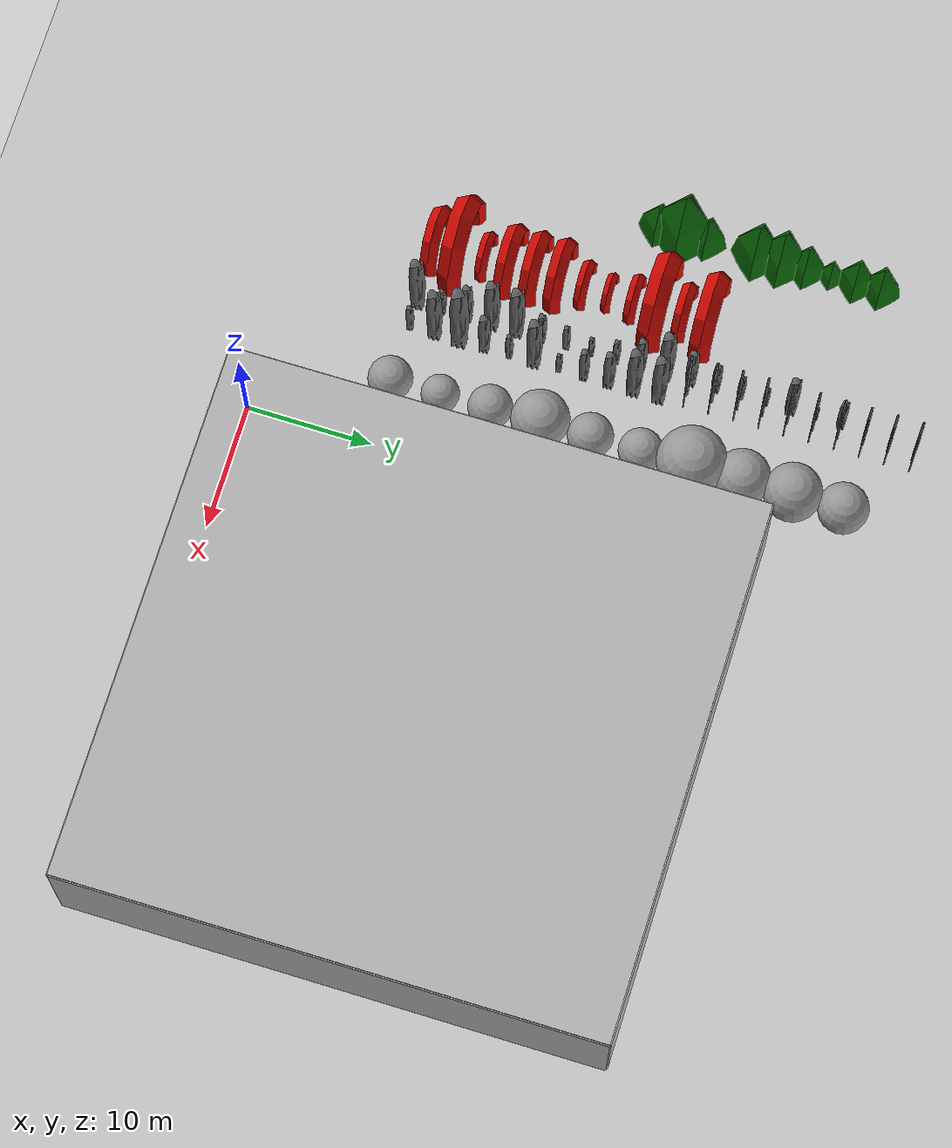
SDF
<sdf version="1.6">
 <world name="default">
  <model name="ground_plane">
   <static>1</static>
   <link name="link">
    <collision name="collision">
     <geometry><plane><normal>0 0 1</normal><size>1000 1000</size></plane></geometry>
     <surface>
      <contact><collide_bitmask>65535</collide_bitmask></contact>
      <friction><ode><mu>100</mu><mu2>50</mu2></ode></friction>
     </surface>
    </collision>
    <visual name="visual">
     <cast_shadows>0</cast_shadows>
     <geometry><plane><normal>0 0 1</normal><size>1000 1000</size></plane></geometry>
     <material>
      <script><uri>file://media/materials/scripts/gazebo.material</uri><name>Gazebo/Grey</name></script>
     </material>
    </visual>
   </link>
  </model>
  <model name="wall_top">
   <static>1</static>
   <link name="link">
    <pose>0 0 0.1 0 0 0</pose>
    <collision name="collision"><geometry><box><size>42.0 42.0 0.2</size></box></geometry></collision>
    <visual name="visual">
     <cast_shadows>0</cast_shadows>
     <geometry><box><size>42.0 42.0 0.2</size></box></geometry>
    </visual>
   </link>
   <pose>20.0 20.0 10.0 0 0 0</pose>
  </model>
  <model name="Simple Pyramid_8">
   <pose>-23.5 26 0 0 -0 0</pose>
   <static>1</static>
   <link name="link">
    <collision name="collision">
     <geometry>
      <mesh><uri>model://Simple Pyramid/meshes/Simple Pyramid.dae</uri><scale>0.75 0.75 0.75</scale></mesh>
     </geometry>
    </collision>
    <visual name="visual">
     <geometry>
      <mesh><uri>model://Simple Pyramid/meshes/Simple Pyramid.dae</uri><scale>0.75 0.75 0.75</scale></mesh>
     </geometry>
    </visual>
   </link>
  </model>
  <model name="Simple Pyramid_9">
   <pose>-23.5 28 0 0 -0 0</pose>
   <static>1</static>
   <link name="link">
    <collision name="collision">
     <geometry>
      <mesh><uri>model://Simple Pyramid/meshes/Simple Pyramid.dae</uri><scale>1.25 1.25 1.25</scale></mesh>
     </geometry>
    </collision>
    <visual name="visual">
     <geometry>
      <mesh><uri>model://Simple Pyramid/meshes/Simple Pyramid.dae</uri><scale>1.25 1.25 1.25</scale></mesh>
     </geometry>
    </visual>
   </link>
  </model>
  <model name="Simple Pyramid_10">
   <pose>-23.5 30 0 0 -0 0</pose>
   <static>1</static>
   <link name="link">
    <collision name="collision">
     <geometry>
      <mesh><uri>model://Simple Pyramid/meshes/Simple Pyramid.dae</uri><scale>0.75 0.75 0.75</scale></mesh>
     </geometry>
    </collision>
    <visual name="visual">
     <geometry>
      <mesh><uri>model://Simple Pyramid/meshes/Simple Pyramid.dae</uri><scale>0.75 0.75 0.75</scale></mesh>
     </geometry>
    </visual>
   </link>
  </model>
  <model name="Simple U_7">
   <pose>-17 24 0 0 -0 0</pose>
   <static>1</static>
   <link name="link">
    <collision name="collision">
     <geometry><mesh><uri>model://Simple U/meshes/Simple U.dae</uri><scale>0.4 0.4 0.4</scale></mesh></geometry>
    </collision>
    <visual name="visual">
     <geometry><mesh><uri>model://Simple U/meshes/Simple U.dae</uri><scale>0.4 0.4 0.4</scale></mesh></geometry>
    </visual>
   </link>
  </model>
  <model name="Simple U_0">
   <pose>-17 10 0 0 -0 0</pose>
   <static>1</static>
   <link name="link">
    <collision name="collision">
     <geometry><mesh><uri>model://Simple U/meshes/Simple U.dae</uri><scale>0.7 0.7 0.7</scale></mesh></geometry>
    </collision>
    <visual name="visual">
     <geometry><mesh><uri>model://Simple U/meshes/Simple U.dae</uri><scale>0.7 0.7 0.7</scale></mesh></geometry>
    </visual>
   </link>
  </model>
  <model name="Simple U_1">
   <pose>-17 12 0 0 -0 0</pose>
   <static>1</static>
   <link name="link">
    <collision name="collision">
     <geometry><mesh><uri>model://Simple U/meshes/Simple U.dae</uri></mesh></geometry>
    </collision>
    <visual name="visual">
     <geometry><mesh><uri>model://Simple U/meshes/Simple U.dae</uri></mesh></geometry>
    </visual>
   </link>
  </model>
  <model name="Simple U_2">
   <pose>-17 14 0 0 -0 0</pose>
   <static>1</static>
   <link name="link">
    <collision name="collision">
     <geometry><mesh><uri>model://Simple U/meshes/Simple U.dae</uri><scale>0.5 0.5 0.5</scale></mesh></geometry>
    </collision>
    <visual name="visual">
     <geometry><mesh><uri>model://Simple U/meshes/Simple U.dae</uri><scale>0.5 0.5 0.5</scale></mesh></geometry>
    </visual>
   </link>
  </model>
  <model name="Simple U_3">
   <pose>-17 16 0 0 -0 0</pose>
   <static>1</static>
   <link name="link">
    <collision name="collision">
     <geometry><mesh><uri>model://Simple U/meshes/Simple U.dae</uri><scale>0.75 0.75 0.75</scale></mesh></geometry>
    </collision>
    <visual name="visual">
     <geometry><mesh><uri>model://Simple U/meshes/Simple U.dae</uri><scale>0.75 0.75 0.75</scale></mesh></geometry>
    </visual>
   </link>
  </model>
  <model name="Simple U_4">
   <pose>-17 18 0 0 -0 0</pose>
   <static>1</static>
   <link name="link">
    <collision name="collision">
     <geometry><mesh><uri>model://Simple U/meshes/Simple U.dae</uri><scale>0.75 0.75 0.75</scale></mesh></geometry>
    </collision>
    <visual name="visual">
     <geometry><mesh><uri>model://Simple U/meshes/Simple U.dae</uri><scale>0.75 0.75 0.75</scale></mesh></geometry>
    </visual>
   </link>
  </model>
  <model name="Simple U_5">
   <pose>-17 20 0 0 -0 0</pose>
   <static>1</static>
   <link name="link">
    <collision name="collision">
     <geometry><mesh><uri>model://Simple U/meshes/Simple U.dae</uri><scale>0.75 0.75 0.75</scale></mesh></geometry>
    </collision>
    <visual name="visual">
     <geometry><mesh><uri>model://Simple U/meshes/Simple U.dae</uri><scale>0.75 0.75 0.75</scale></mesh></geometry>
    </visual>
   </link>
  </model>
  <model name="Simple U_6">
   <pose>-17 22 0 0 -0 0</pose>
   <static>1</static>
   <link name="link">
    <collision name="collision">
     <geometry><mesh><uri>model://Simple U/meshes/Simple U.dae</uri><scale>0.5 0.5 0.5</scale></mesh></geometry>
    </collision>
    <visual name="visual">
     <geometry><mesh><uri>model://Simple U/meshes/Simple U.dae</uri><scale>0.5 0.5 0.5</scale></mesh></geometry>
    </visual>
   </link>
  </model>
  <model name="Simple Stone_25">
   <pose>-10 24 0 0 -0 0</pose>
   <static>1</static>
   <link name="link">
    <collision name="collision">
     <geometry>
      <mesh><uri>model://Simple Stone/meshes/Simple Stone.dae</uri><scale>0.66 0.66 0.66</scale></mesh>
     </geometry>
    </collision>
    <visual name="visual">
     <geometry>
      <mesh><uri>model://Simple Stone/meshes/Simple Stone.dae</uri><scale>0.66 0.66 0.66</scale></mesh>
     </geometry>
    </visual>
   </link>
  </model>
  <model name="Simple Stone_0">
   <pose>-12 10 0 0 -0 0</pose>
   <static>1</static>
   <link name="link">
    <collision name="collision">
     <geometry><mesh><uri>model://Simple Stone/meshes/Simple Stone.dae</uri></mesh></geometry>
    </collision>
    <visual name="visual">
     <geometry><mesh><uri>model://Simple Stone/meshes/Simple Stone.dae</uri></mesh></geometry>
    </visual>
   </link>
  </model>
  <model name="Simple Stone_1">
   <pose>-12 12 0 0 -0 0</pose>
   <static>1</static>
   <link name="link">
    <collision name="collision">
     <geometry>
      <mesh><uri>model://Simple Stone/meshes/Simple Stone.dae</uri><scale>0.5 0.5 0.5</scale></mesh>
     </geometry>
    </collision>
    <visual name="visual">
     <geometry>
      <mesh><uri>model://Simple Stone/meshes/Simple Stone.dae</uri><scale>0.5 0.5 0.5</scale></mesh>
     </geometry>
    </visual>
   </link>
  </model>
  <model name="Simple Stone_2">
   <pose>-12 14 0 0 -0 0</pose>
   <static>1</static>
   <link name="link">
    <collision name="collision">
     <geometry>
      <mesh><uri>model://Simple Stone/meshes/Simple Stone.dae</uri><scale>0.75 0.75 0.75</scale></mesh>
     </geometry>
    </collision>
    <visual name="visual">
     <geometry>
      <mesh><uri>model://Simple Stone/meshes/Simple Stone.dae</uri><scale>0.75 0.75 0.75</scale></mesh>
     </geometry>
    </visual>
   </link>
  </model>
  <model name="Simple Stone_3">
   <pose>-12 16 0 0 -0 0</pose>
   <static>1</static>
   <link name="link">
    <collision name="collision">
     <geometry><mesh><uri>model://Simple Stone/meshes/Simple Stone.dae</uri></mesh></geometry>
    </collision>
    <visual name="visual">
     <geometry><mesh><uri>model://Simple Stone/meshes/Simple Stone.dae</uri></mesh></geometry>
    </visual>
   </link>
  </model>
  <model name="Simple Stone_4">
   <pose>-12 18 0 0 -0 0</pose>
   <static>1</static>
   <link name="link">
    <collision name="collision">
     <geometry><mesh><uri>model://Simple Stone/meshes/Simple Stone.dae</uri></mesh></geometry>
    </collision>
    <visual name="visual">
     <geometry><mesh><uri>model://Simple Stone/meshes/Simple Stone.dae</uri></mesh></geometry>
    </visual>
   </link>
  </model>
  <model name="Simple Stone_5">
   <pose>-12 20 0 0 -0 0</pose>
   <static>1</static>
   <link name="link">
    <collision name="collision">
     <geometry>
      <mesh><uri>model://Simple Stone/meshes/Simple Stone.dae</uri><scale>0.6 0.6 0.6</scale></mesh>
     </geometry>
    </collision>
    <visual name="visual">
     <geometry>
      <mesh><uri>model://Simple Stone/meshes/Simple Stone.dae</uri><scale>0.6 0.6 0.6</scale></mesh>
     </geometry>
    </visual>
   </link>
  </model>
  <model name="Simple Stone_6">
   <pose>-12 22 0 0 -0 0</pose>
   <static>1</static>
   <link name="link">
    <collision name="collision">
     <geometry>
      <mesh><uri>model://Simple Stone/meshes/Simple Stone.dae</uri><scale>0.5 0.5 0.5</scale></mesh>
     </geometry>
    </collision>
    <visual name="visual">
     <geometry>
      <mesh><uri>model://Simple Stone/meshes/Simple Stone.dae</uri><scale>0.5 0.5 0.5</scale></mesh>
     </geometry>
    </visual>
   </link>
  </model>
  <model name="Simple Stone_7">
   <pose>-12 24 0 0 -0 0</pose>
   <static>1</static>
   <link name="link">
    <collision name="collision">
     <geometry>
      <mesh><uri>model://Simple Stone/meshes/Simple Stone.dae</uri><scale>0.4 0.4 0.4</scale></mesh>
     </geometry>
    </collision>
    <visual name="visual">
     <geometry>
      <mesh><uri>model://Simple Stone/meshes/Simple Stone.dae</uri><scale>0.4 0.4 0.4</scale></mesh>
     </geometry>
    </visual>
   </link>
  </model>
  <model name="Simple Stone_8">
   <pose>-12 26 0 0 -0 0</pose>
   <static>1</static>
   <link name="link">
    <collision name="collision">
     <geometry>
      <mesh><uri>model://Simple Stone/meshes/Simple Stone.dae</uri><scale>0.5 0.5 0.5</scale></mesh>
     </geometry>
    </collision>
    <visual name="visual">
     <geometry>
      <mesh><uri>model://Simple Stone/meshes/Simple Stone.dae</uri><scale>0.5 0.5 0.5</scale></mesh>
     </geometry>
    </visual>
   </link>
  </model>
  <model name="Simple Stone_9">
   <pose>-12 28 0 0 -0 0</pose>
   <static>1</static>
   <link name="link">
    <collision name="collision">
     <geometry>
      <mesh><uri>model://Simple Stone/meshes/Simple Stone.dae</uri><scale>0.7 0.7 0.7</scale></mesh>
     </geometry>
    </collision>
    <visual name="visual">
     <geometry>
      <mesh><uri>model://Simple Stone/meshes/Simple Stone.dae</uri><scale>0.7 0.7 0.7</scale></mesh>
     </geometry>
    </visual>
   </link>
  </model>
  <model name="Simple Stone_10">
   <pose>-12 30 0 0 -0 0</pose>
   <static>1</static>
   <link name="link">
    <collision name="collision">
     <geometry><mesh><uri>model://Simple Stone/meshes/Simple Stone.dae</uri></mesh></geometry>
    </collision>
    <visual name="visual">
     <geometry><mesh><uri>model://Simple Stone/meshes/Simple Stone.dae</uri></mesh></geometry>
    </visual>
   </link>
  </model>
  <model name="Simple Stone_11">
   <pose>-12 32 0 0 -0 0</pose>
   <static>1</static>
   <link name="link">
    <collision name="collision">
     <geometry>
      <mesh><uri>model://Simple Stone/meshes/Simple Stone.dae</uri><scale>0.75 0.75 0.75</scale></mesh>
     </geometry>
    </collision>
    <visual name="visual">
     <geometry>
      <mesh><uri>model://Simple Stone/meshes/Simple Stone.dae</uri><scale>0.75 0.75 0.75</scale></mesh>
     </geometry>
    </visual>
   </link>
  </model>
  <model name="Simple Stone_12">
   <pose>-12 34 0 0 -0 0</pose>
   <static>1</static>
   <link name="link">
    <collision name="collision">
     <geometry>
      <mesh><uri>model://Simple Stone/meshes/Simple Stone.dae</uri><scale>0.6 0.6 0.6</scale></mesh>
     </geometry>
    </collision>
    <visual name="visual">
     <geometry>
      <mesh><uri>model://Simple Stone/meshes/Simple Stone.dae</uri><scale>0.6 0.6 0.6</scale></mesh>
     </geometry>
    </visual>
   </link>
  </model>
  <model name="Simple Stone_13">
   <pose>-12 36 0 0 -0 0</pose>
   <static>1</static>
   <link name="link">
    <collision name="collision">
     <geometry>
      <mesh><uri>model://Simple Stone/meshes/Simple Stone.dae</uri><scale>0.5 0.5 0.5</scale></mesh>
     </geometry>
    </collision>
    <visual name="visual">
     <geometry>
      <mesh><uri>model://Simple Stone/meshes/Simple Stone.dae</uri><scale>0.5 0.5 0.5</scale></mesh>
     </geometry>
    </visual>
   </link>
  </model>
  <model name="Simple Stone_14">
   <pose>-12 38 0 0 -0 0</pose>
   <static>1</static>
   <link name="link">
    <collision name="collision">
     <geometry>
      <mesh><uri>model://Simple Stone/meshes/Simple Stone.dae</uri><scale>0.4 0.4 0.4</scale></mesh>
     </geometry>
    </collision>
    <visual name="visual">
     <geometry>
      <mesh><uri>model://Simple Stone/meshes/Simple Stone.dae</uri><scale>0.4 0.4 0.4</scale></mesh>
     </geometry>
    </visual>
   </link>
  </model>
  <model name="Simple Stone_15">
   <pose>-12 40 0 0 -0 0</pose>
   <static>1</static>
   <link name="link">
    <collision name="collision">
     <geometry>
      <mesh><uri>model://Simple Stone/meshes/Simple Stone.dae</uri><scale>0.8 0.8 0.8</scale></mesh>
     </geometry>
    </collision>
    <visual name="visual">
     <geometry>
      <mesh><uri>model://Simple Stone/meshes/Simple Stone.dae</uri><scale>0.8 0.8 0.8</scale></mesh>
     </geometry>
    </visual>
   </link>
  </model>
  <model name="Simple Stone_16">
   <pose>-12 42 0 0 -0 0</pose>
   <static>1</static>
   <link name="link">
    <collision name="collision">
     <geometry>
      <mesh><uri>model://Simple Stone/meshes/Simple Stone.dae</uri><scale>0.3 0.3 0.3</scale></mesh>
     </geometry>
    </collision>
    <visual name="visual">
     <geometry>
      <mesh><uri>model://Simple Stone/meshes/Simple Stone.dae</uri><scale>0.3 0.3 0.3</scale></mesh>
     </geometry>
    </visual>
   </link>
  </model>
  <model name="Simple Stone_17">
   <pose>-12 44 0 0 -0 0</pose>
   <static>1</static>
   <link name="link">
    <collision name="collision">
     <geometry>
      <mesh><uri>model://Simple Stone/meshes/Simple Stone.dae</uri><scale>0.6 0.6 0.6</scale></mesh>
     </geometry>
    </collision>
    <visual name="visual">
     <geometry>
      <mesh><uri>model://Simple Stone/meshes/Simple Stone.dae</uri><scale>0.6 0.6 0.6</scale></mesh>
     </geometry>
    </visual>
   </link>
  </model>
  <model name="Simple Stone_18">
   <pose>-10 10 0 0 -0 0</pose>
   <static>1</static>
   <link name="link">
    <collision name="collision">
     <geometry>
      <mesh><uri>model://Simple Stone/meshes/Simple Stone.dae</uri><scale>0.5 0.5 0.5</scale></mesh>
     </geometry>
    </collision>
    <visual name="visual">
     <geometry>
      <mesh><uri>model://Simple Stone/meshes/Simple Stone.dae</uri><scale>0.5 0.5 0.5</scale></mesh>
     </geometry>
    </visual>
   </link>
  </model>
  <model name="Simple Stone_19">
   <pose>-10 12 0 0 -0 0</pose>
   <static>1</static>
   <link name="link">
    <collision name="collision">
     <geometry><mesh><uri>model://Simple Stone/meshes/Simple Stone.dae</uri></mesh></geometry>
    </collision>
    <visual name="visual">
     <geometry><mesh><uri>model://Simple Stone/meshes/Simple Stone.dae</uri></mesh></geometry>
    </visual>
   </link>
  </model>
  <model name="Simple Stone_20">
   <pose>-10 14 0 0 -0 0</pose>
   <static>1</static>
   <link name="link">
    <collision name="collision">
     <geometry>
      <mesh><uri>model://Simple Stone/meshes/Simple Stone.dae</uri><scale>1.2 1.2 1.2</scale></mesh>
     </geometry>
    </collision>
    <visual name="visual">
     <geometry>
      <mesh><uri>model://Simple Stone/meshes/Simple Stone.dae</uri><scale>1.2 1.2 1.2</scale></mesh>
     </geometry>
    </visual>
   </link>
  </model>
  <model name="Simple Stone_21">
   <pose>-10 16 0 0 -0 0</pose>
   <static>1</static>
   <link name="link">
    <collision name="collision">
     <geometry>
      <mesh><uri>model://Simple Stone/meshes/Simple Stone.dae</uri><scale>0.77 0.77 0.77</scale></mesh>
     </geometry>
    </collision>
    <visual name="visual">
     <geometry>
      <mesh><uri>model://Simple Stone/meshes/Simple Stone.dae</uri><scale>0.77 0.77 0.77</scale></mesh>
     </geometry>
    </visual>
   </link>
  </model>
  <model name="Simple Stone_22">
   <pose>-10 18 0 0 -0 0</pose>
   <static>1</static>
   <link name="link">
    <collision name="collision">
     <geometry>
      <mesh><uri>model://Simple Stone/meshes/Simple Stone.dae</uri><scale>0.5 0.5 0.5</scale></mesh>
     </geometry>
    </collision>
    <visual name="visual">
     <geometry>
      <mesh><uri>model://Simple Stone/meshes/Simple Stone.dae</uri><scale>0.5 0.5 0.5</scale></mesh>
     </geometry>
    </visual>
   </link>
  </model>
  <model name="Simple Stone_23">
   <pose>-10 20 0 0 -0 0</pose>
   <static>1</static>
   <link name="link">
    <collision name="collision">
     <geometry><mesh><uri>model://Simple Stone/meshes/Simple Stone.dae</uri></mesh></geometry>
    </collision>
    <visual name="visual">
     <geometry><mesh><uri>model://Simple Stone/meshes/Simple Stone.dae</uri></mesh></geometry>
    </visual>
   </link>
  </model>
  <model name="Simple Stone_24">
   <pose>-10 22 0 0 -0 0</pose>
   <static>1</static>
   <link name="link">
    <collision name="collision">
     <geometry>
      <mesh><uri>model://Simple Stone/meshes/Simple Stone.dae</uri><scale>0.4 0.4 0.4</scale></mesh>
     </geometry>
    </collision>
    <visual name="visual">
     <geometry>
      <mesh><uri>model://Simple Stone/meshes/Simple Stone.dae</uri><scale>0.4 0.4 0.4</scale></mesh>
     </geometry>
    </visual>
   </link>
  </model>
  <model name="Simple Pyramid_17">
   <pose>-23.5 44 0 0 -0 0</pose>
   <static>1</static>
   <link name="link">
    <collision name="collision">
     <geometry>
      <mesh><uri>model://Simple Pyramid/meshes/Simple Pyramid.dae</uri><scale>0.75 0.75 0.75</scale></mesh>
     </geometry>
    </collision>
    <visual name="visual">
     <geometry>
      <mesh><uri>model://Simple Pyramid/meshes/Simple Pyramid.dae</uri><scale>0.75 0.75 0.75</scale></mesh>
     </geometry>
    </visual>
   </link>
  </model>
  <model name="Simple U_11">
   <pose>-17 32 0 0 -0 0</pose>
   <static>1</static>
   <link name="link">
    <collision name="collision">
     <geometry><mesh><uri>model://Simple U/meshes/Simple U.dae</uri><scale>0.9 0.9 0.9</scale></mesh></geometry>
    </collision>
    <visual name="visual">
     <geometry><mesh><uri>model://Simple U/meshes/Simple U.dae</uri><scale>0.9 0.9 0.9</scale></mesh></geometry>
    </visual>
   </link>
  </model>
  <model name="Simple U_8">
   <pose>-17 26 0 0 -0 0</pose>
   <static>1</static>
   <link name="link">
    <collision name="collision">
     <geometry><mesh><uri>model://Simple U/meshes/Simple U.dae</uri><scale>0.5 0.5 0.5</scale></mesh></geometry>
    </collision>
    <visual name="visual">
     <geometry><mesh><uri>model://Simple U/meshes/Simple U.dae</uri><scale>0.5 0.5 0.5</scale></mesh></geometry>
    </visual>
   </link>
  </model>
  <model name="Simple U_9">
   <pose>-17 28 0 0 -0 0</pose>
   <static>1</static>
   <link name="link">
    <collision name="collision">
     <geometry><mesh><uri>model://Simple U/meshes/Simple U.dae</uri></mesh></geometry>
    </collision>
    <visual name="visual">
     <geometry><mesh><uri>model://Simple U/meshes/Simple U.dae</uri></mesh></geometry>
    </visual>
   </link>
  </model>
  <model name="Simple Pyramid_12">
   <pose>-23.5 34 0 0 -0 0</pose>
   <static>1</static>
   <link name="link">
    <collision name="collision">
     <geometry><mesh><uri>model://Simple Pyramid/meshes/Simple Pyramid.dae</uri></mesh></geometry>
    </collision>
    <visual name="visual">
     <geometry><mesh><uri>model://Simple Pyramid/meshes/Simple Pyramid.dae</uri></mesh></geometry>
    </visual>
   </link>
  </model>
  <model name="Simple Pyramid_13">
   <pose>-23.5 36 0 0 -0 0</pose>
   <static>1</static>
   <link name="link">
    <collision name="collision">
     <geometry><mesh><uri>model://Simple Pyramid/meshes/Simple Pyramid.dae</uri></mesh></geometry>
    </collision>
    <visual name="visual">
     <geometry><mesh><uri>model://Simple Pyramid/meshes/Simple Pyramid.dae</uri></mesh></geometry>
    </visual>
   </link>
  </model>
  <model name="Simple Pyramid_14">
   <pose>-23.5 38 0 0 -0 0</pose>
   <static>1</static>
   <link name="link">
    <collision name="collision">
     <geometry>
      <mesh><uri>model://Simple Pyramid/meshes/Simple Pyramid.dae</uri><scale>0.75 0.75 0.75</scale></mesh>
     </geometry>
    </collision>
    <visual name="visual">
     <geometry>
      <mesh><uri>model://Simple Pyramid/meshes/Simple Pyramid.dae</uri><scale>0.75 0.75 0.75</scale></mesh>
     </geometry>
    </visual>
   </link>
  </model>
  <model name="Simple Pyramid_15">
   <pose>-23.5 40 0 0 -0 0</pose>
   <static>1</static>
   <link name="link">
    <collision name="collision">
     <geometry>
      <mesh><uri>model://Simple Pyramid/meshes/Simple Pyramid.dae</uri><scale>0.5 0.5 0.5</scale></mesh>
     </geometry>
    </collision>
    <visual name="visual">
     <geometry>
      <mesh><uri>model://Simple Pyramid/meshes/Simple Pyramid.dae</uri><scale>0.5 0.5 0.5</scale></mesh>
     </geometry>
    </visual>
   </link>
  </model>
  <model name="Simple Stone_28">
   <pose>-10 30 0 0 -0 0</pose>
   <static>1</static>
   <link name="link">
    <collision name="collision">
     <geometry><mesh><uri>model://Simple Stone/meshes/Simple Stone.dae</uri></mesh></geometry>
    </collision>
    <visual name="visual">
     <geometry><mesh><uri>model://Simple Stone/meshes/Simple Stone.dae</uri></mesh></geometry>
    </visual>
   </link>
  </model>
  <model name="Simple Stone_29">
   <pose>-10 32 0 0 -0 0</pose>
   <static>1</static>
   <link name="link">
    <collision name="collision">
     <geometry>
      <mesh><uri>model://Simple Stone/meshes/Simple Stone.dae</uri><scale>0.1 0.1 1.0</scale></mesh>
     </geometry>
    </collision>
    <visual name="visual">
     <geometry>
      <mesh><uri>model://Simple Stone/meshes/Simple Stone.dae</uri><scale>0.1 0.1 1.0</scale></mesh>
     </geometry>
    </visual>
   </link>
  </model>
  <model name="Simple Stone_30">
   <pose>-10 34 0 0 -0 0</pose>
   <static>1</static>
   <link name="link">
    <collision name="collision">
     <geometry>
      <mesh><uri>model://Simple Stone/meshes/Simple Stone.dae</uri><scale>0.1 0.1 1.0</scale></mesh>
     </geometry>
    </collision>
    <visual name="visual">
     <geometry>
      <mesh><uri>model://Simple Stone/meshes/Simple Stone.dae</uri><scale>0.1 0.1 1.0</scale></mesh>
     </geometry>
    </visual>
   </link>
  </model>
  <model name="Simple Stone_31">
   <pose>-10 36 0 0 -0 0</pose>
   <static>1</static>
   <link name="link">
    <collision name="collision">
     <geometry>
      <mesh><uri>model://Simple Stone/meshes/Simple Stone.dae</uri><scale>0.1 0.1 1.0</scale></mesh>
     </geometry>
    </collision>
    <visual name="visual">
     <geometry>
      <mesh><uri>model://Simple Stone/meshes/Simple Stone.dae</uri><scale>0.1 0.1 1.0</scale></mesh>
     </geometry>
    </visual>
   </link>
  </model>
  <model name="Simple Stone_32">
   <pose>-10 38 0 0 -0 0</pose>
   <static>1</static>
   <link name="link">
    <collision name="collision">
     <geometry>
      <mesh><uri>model://Simple Stone/meshes/Simple Stone.dae</uri><scale>0.1 0.1 1.0</scale></mesh>
     </geometry>
    </collision>
    <visual name="visual">
     <geometry>
      <mesh><uri>model://Simple Stone/meshes/Simple Stone.dae</uri><scale>0.1 0.1 1.0</scale></mesh>
     </geometry>
    </visual>
   </link>
  </model>
  <model name="Simple Stone_33">
   <pose>-10 40 0 0 -0 0</pose>
   <static>1</static>
   <link name="link">
    <collision name="collision">
     <geometry>
      <mesh><uri>model://Simple Stone/meshes/Simple Stone.dae</uri><scale>0.1 0.1 1.0</scale></mesh>
     </geometry>
    </collision>
    <visual name="visual">
     <geometry>
      <mesh><uri>model://Simple Stone/meshes/Simple Stone.dae</uri><scale>0.1 0.1 1.0</scale></mesh>
     </geometry>
    </visual>
   </link>
  </model>
  <model name="Simple Stone_34">
   <pose>-11 32 0 0 -0 0</pose>
   <static>1</static>
   <link name="link">
    <collision name="collision">
     <geometry>
      <mesh><uri>model://Simple Stone/meshes/Simple Stone.dae</uri><scale>0.2 0.2 1.0</scale></mesh>
     </geometry>
    </collision>
    <visual name="visual">
     <geometry>
      <mesh><uri>model://Simple Stone/meshes/Simple Stone.dae</uri><scale>0.2 0.2 1.0</scale></mesh>
     </geometry>
    </visual>
   </link>
  </model>
  <model name="Simple Stone_35">
   <pose>-11 34 0 0 -0 0</pose>
   <static>1</static>
   <link name="link">
    <collision name="collision">
     <geometry>
      <mesh><uri>model://Simple Stone/meshes/Simple Stone.dae</uri><scale>0.2 0.2 1.0</scale></mesh>
     </geometry>
    </collision>
    <visual name="visual">
     <geometry>
      <mesh><uri>model://Simple Stone/meshes/Simple Stone.dae</uri><scale>0.2 0.2 1.0</scale></mesh>
     </geometry>
    </visual>
   </link>
  </model>
  <model name="Simple Stone_36">
   <pose>-11 36 0 0 -0 0</pose>
   <static>1</static>
   <link name="link">
    <collision name="collision">
     <geometry>
      <mesh><uri>model://Simple Stone/meshes/Simple Stone.dae</uri><scale>0.2 0.2 1.0</scale></mesh>
     </geometry>
    </collision>
    <visual name="visual">
     <geometry>
      <mesh><uri>model://Simple Stone/meshes/Simple Stone.dae</uri><scale>0.2 0.2 1.0</scale></mesh>
     </geometry>
    </visual>
   </link>
  </model>
  <model name="Simple Stone_37">
   <pose>-11 38 0 0 -0 0</pose>
   <static>1</static>
   <link name="link">
    <collision name="collision">
     <geometry>
      <mesh><uri>model://Simple Stone/meshes/Simple Stone.dae</uri><scale>0.2 0.2 1.0</scale></mesh>
     </geometry>
    </collision>
    <visual name="visual">
     <geometry>
      <mesh><uri>model://Simple Stone/meshes/Simple Stone.dae</uri><scale>0.2 0.2 1.0</scale></mesh>
     </geometry>
    </visual>
   </link>
  </model>
  <model name="Simple Stone_38">
   <pose>-11 40 0 0 -0 0</pose>
   <static>1</static>
   <link name="link">
    <collision name="collision">
     <geometry>
      <mesh><uri>model://Simple Stone/meshes/Simple Stone.dae</uri><scale>0.2 0.2 1.0</scale></mesh>
     </geometry>
    </collision>
    <visual name="visual">
     <geometry>
      <mesh><uri>model://Simple Stone/meshes/Simple Stone.dae</uri><scale>0.2 0.2 1.0</scale></mesh>
     </geometry>
    </visual>
   </link>
  </model>
  <model name="Simple Stone_39">
   <pose>-10 42 0 0 -0 0</pose>
   <static>1</static>
   <link name="link">
    <collision name="collision">
     <geometry>
      <mesh><uri>model://Simple Stone/meshes/Simple Stone.dae</uri><scale>0.1 0.1 1.0</scale></mesh>
     </geometry>
    </collision>
    <visual name="visual">
     <geometry>
      <mesh><uri>model://Simple Stone/meshes/Simple Stone.dae</uri><scale>0.1 0.1 1.0</scale></mesh>
     </geometry>
    </visual>
   </link>
  </model>
  <model name="Simple Stone_40">
   <pose>-10 44 0 0 -0 0</pose>
   <static>1</static>
   <link name="link">
    <collision name="collision">
     <geometry>
      <mesh><uri>model://Simple Stone/meshes/Simple Stone.dae</uri><scale>0.1 0.1 1.0</scale></mesh>
     </geometry>
    </collision>
    <visual name="visual">
     <geometry>
      <mesh><uri>model://Simple Stone/meshes/Simple Stone.dae</uri><scale>0.1 0.1 1.0</scale></mesh>
     </geometry>
    </visual>
   </link>
  </model>
  <model name="Simple Stone_41">
   <pose>-10 46 0 0 -0 0</pose>
   <static>1</static>
   <link name="link">
    <collision name="collision">
     <geometry>
      <mesh><uri>model://Simple Stone/meshes/Simple Stone.dae</uri><scale>0.1 0.1 1.0</scale></mesh>
     </geometry>
    </collision>
    <visual name="visual">
     <geometry>
      <mesh><uri>model://Simple Stone/meshes/Simple Stone.dae</uri><scale>0.1 0.1 1.0</scale></mesh>
     </geometry>
    </visual>
   </link>
  </model>
  <model name="Simple Stone_42">
   <pose>-10 48 0 0 -0 0</pose>
   <static>1</static>
   <link name="link">
    <collision name="collision">
     <geometry>
      <mesh><uri>model://Simple Stone/meshes/Simple Stone.dae</uri><scale>0.1 0.1 1.0</scale></mesh>
     </geometry>
    </collision>
    <visual name="visual">
     <geometry>
      <mesh><uri>model://Simple Stone/meshes/Simple Stone.dae</uri><scale>0.1 0.1 1.0</scale></mesh>
     </geometry>
    </visual>
   </link>
  </model>
  <model name="Simple Stone_43">
   <pose>-10 50 0 0 -0 0</pose>
   <static>1</static>
   <link name="link">
    <collision name="collision">
     <geometry>
      <mesh><uri>model://Simple Stone/meshes/Simple Stone.dae</uri><scale>0.1 0.1 1.0</scale></mesh>
     </geometry>
    </collision>
    <visual name="visual">
     <geometry>
      <mesh><uri>model://Simple Stone/meshes/Simple Stone.dae</uri><scale>0.1 0.1 1.0</scale></mesh>
     </geometry>
    </visual>
   </link>
  </model>
  <model name="Simple Stone_44">
   <pose>-11 42 0 0 -0 0</pose>
   <static>1</static>
   <link name="link">
    <collision name="collision">
     <geometry>
      <mesh><uri>model://Simple Stone/meshes/Simple Stone.dae</uri><scale>0.2 0.2 1.0</scale></mesh>
     </geometry>
    </collision>
    <visual name="visual">
     <geometry>
      <mesh><uri>model://Simple Stone/meshes/Simple Stone.dae</uri><scale>0.2 0.2 1.0</scale></mesh>
     </geometry>
    </visual>
   </link>
  </model>
  <model name="Simple Stone_45">
   <pose>-11 44 0 0 -0 0</pose>
   <static>1</static>
   <link name="link">
    <collision name="collision">
     <geometry>
      <mesh><uri>model://Simple Stone/meshes/Simple Stone.dae</uri><scale>0.2 0.2 1.0</scale></mesh>
     </geometry>
    </collision>
    <visual name="visual">
     <geometry>
      <mesh><uri>model://Simple Stone/meshes/Simple Stone.dae</uri><scale>0.2 0.2 1.0</scale></mesh>
     </geometry>
    </visual>
   </link>
  </model>
  <model name="Simple Stone_46">
   <pose>-11 46 0 0 -0 0</pose>
   <static>1</static>
   <link name="link">
    <collision name="collision">
     <geometry>
      <mesh><uri>model://Simple Stone/meshes/Simple Stone.dae</uri><scale>0.2 0.2 1.0</scale></mesh>
     </geometry>
    </collision>
    <visual name="visual">
     <geometry>
      <mesh><uri>model://Simple Stone/meshes/Simple Stone.dae</uri><scale>0.2 0.2 1.0</scale></mesh>
     </geometry>
    </visual>
   </link>
  </model>
  <model name="Simple Stone_47">
   <pose>-11 48 0 0 -0 0</pose>
   <static>1</static>
   <link name="link">
    <collision name="collision">
     <geometry>
      <mesh><uri>model://Simple Stone/meshes/Simple Stone.dae</uri><scale>0.2 0.2 1.0</scale></mesh>
     </geometry>
    </collision>
    <visual name="visual">
     <geometry>
      <mesh><uri>model://Simple Stone/meshes/Simple Stone.dae</uri><scale>0.2 0.2 1.0</scale></mesh>
     </geometry>
    </visual>
   </link>
  </model>
  <model name="Simple Stone_48">
   <pose>-11 50 0 0 -0 0</pose>
   <static>1</static>
   <link name="link">
    <collision name="collision">
     <geometry>
      <mesh><uri>model://Simple Stone/meshes/Simple Stone.dae</uri><scale>0.2 0.2 1.0</scale></mesh>
     </geometry>
    </collision>
    <visual name="visual">
     <geometry>
      <mesh><uri>model://Simple Stone/meshes/Simple Stone.dae</uri><scale>0.2 0.2 1.0</scale></mesh>
     </geometry>
    </visual>
   </link>
  </model>
  <model name="Simple Stone_26">
   <pose>-10 26 0 0 -0 0</pose>
   <static>1</static>
   <link name="link">
    <collision name="collision">
     <geometry>
      <mesh><uri>model://Simple Stone/meshes/Simple Stone.dae</uri><scale>0.77 0.77 0.77</scale></mesh>
     </geometry>
    </collision>
    <visual name="visual">
     <geometry>
      <mesh><uri>model://Simple Stone/meshes/Simple Stone.dae</uri><scale>0.77 0.77 0.77</scale></mesh>
     </geometry>
    </visual>
   </link>
  </model>
  <model name="Simple U_10">
   <pose>-17 30 0 0 -0 0</pose>
   <static>1</static>
   <link name="link">
    <collision name="collision">
     <geometry><mesh><uri>model://Simple U/meshes/Simple U.dae</uri><scale>0.6 0.6 0.6</scale></mesh></geometry>
    </collision>
    <visual name="visual">
     <geometry><mesh><uri>model://Simple U/meshes/Simple U.dae</uri><scale>0.6 0.6 0.6</scale></mesh></geometry>
    </visual>
   </link>
  </model>
  <model name="Simple Pyramid_16">
   <pose>-23.5 42 0 0 -0 0</pose>
   <static>1</static>
   <link name="link">
    <collision name="collision">
     <geometry>
      <mesh><uri>model://Simple Pyramid/meshes/Simple Pyramid.dae</uri><scale>0.75 0.75 0.75</scale></mesh>
     </geometry>
    </collision>
    <visual name="visual">
     <geometry>
      <mesh><uri>model://Simple Pyramid/meshes/Simple Pyramid.dae</uri><scale>0.75 0.75 0.75</scale></mesh>
     </geometry>
    </visual>
   </link>
  </model>
  <model name="Simple Stone_27">
   <pose>-10 28 0 0 -0 0</pose>
   <static>1</static>
   <link name="link">
    <collision name="collision">
     <geometry><mesh><uri>model://Simple Stone/meshes/Simple Stone.dae</uri></mesh></geometry>
    </collision>
    <visual name="visual">
     <geometry><mesh><uri>model://Simple Stone/meshes/Simple Stone.dae</uri></mesh></geometry>
    </visual>
   </link>
  </model>
  <model name="unit_sphere_0">
   <pose>-5 10 1.75 0 -0 0</pose>
   <static>1</static>
   <link name="link">
    <inertial>
     <mass>1</mass>
     <inertia><ixx>0.1</ixx><ixy>0</ixy><ixz>0</ixz><iyy>0.1</iyy><iyz>0</iyz><izz>0.1</izz></inertia>
    </inertial>
    <collision name="collision"><geometry><sphere><radius>1.75</radius></sphere></geometry></collision>
    <visual name="visual">
     <geometry><sphere><radius>1.75</radius></sphere></geometry>
     <material>
      <script><name>Gazebo/Grey</name><uri>file://media/materials/scripts/gazebo.material</uri></script>
     </material>
    </visual>
   </link>
  </model>
  <model name="unit_sphere_1">
   <pose>-5 14 1.5 0 -0 0</pose>
   <static>1</static>
   <link name="link">
    <inertial>
     <mass>1</mass>
     <inertia><ixx>0.1</ixx><ixy>0</ixy><ixz>0</ixz><iyy>0.1</iyy><iyz>0</iyz><izz>0.1</izz></inertia>
    </inertial>
    <collision name="collision"><geometry><sphere><radius>1.5</radius></sphere></geometry></collision>
    <visual name="visual">
     <geometry><sphere><radius>1.5</radius></sphere></geometry>
     <material>
      <script><name>Gazebo/Grey</name><uri>file://media/materials/scripts/gazebo.material</uri></script>
     </material>
    </visual>
   </link>
  </model>
  <model name="unit_sphere_2">
   <pose>-5 18 1.75 0 -0 0</pose>
   <static>1</static>
   <link name="link">
    <inertial>
     <mass>1</mass>
     <inertia><ixx>0.1</ixx><ixy>0</ixy><ixz>0</ixz><iyy>0.1</iyy><iyz>0</iyz><izz>0.1</izz></inertia>
    </inertial>
    <collision name="collision"><geometry><sphere><radius>1.75</radius></sphere></geometry></collision>
    <visual name="visual">
     <geometry><sphere><radius>1.75</radius></sphere></geometry>
     <material>
      <script><name>Gazebo/Grey</name><uri>file://media/materials/scripts/gazebo.material</uri></script>
     </material>
    </visual>
   </link>
  </model>
  <model name="unit_sphere_3">
   <pose>-5 22 2.3 0 -0 0</pose>
   <static>1</static>
   <link name="link">
    <inertial>
     <mass>1</mass>
     <inertia><ixx>0.1</ixx><ixy>0</ixy><ixz>0</ixz><iyy>0.1</iyy><iyz>0</iyz><izz>0.1</izz></inertia>
    </inertial>
    <collision name="collision"><geometry><sphere><radius>2.3</radius></sphere></geometry></collision>
    <visual name="visual">
     <geometry><sphere><radius>2.3</radius></sphere></geometry>
     <material>
      <script><name>Gazebo/Grey</name><uri>file://media/materials/scripts/gazebo.material</uri></script>
     </material>
    </visual>
   </link>
  </model>
  <model name="unit_sphere_4">
   <pose>-5 26 1.8 0 -0 0</pose>
   <static>1</static>
   <link name="link">
    <inertial>
     <mass>1</mass>
     <inertia><ixx>0.1</ixx><ixy>0</ixy><ixz>0</ixz><iyy>0.1</iyy><iyz>0</iyz><izz>0.1</izz></inertia>
    </inertial>
    <collision name="collision"><geometry><sphere><radius>1.8</radius></sphere></geometry></collision>
    <visual name="visual">
     <geometry><sphere><radius>1.8</radius></sphere></geometry>
     <material>
      <script><name>Gazebo/Grey</name><uri>file://media/materials/scripts/gazebo.material</uri></script>
     </material>
    </visual>
   </link>
  </model>
  <model name="unit_sphere_5">
   <pose>-5 30 1.75 0 -0 0</pose>
   <static>1</static>
   <link name="link">
    <inertial>
     <mass>1</mass>
     <inertia><ixx>0.1</ixx><ixy>0</ixy><ixz>0</ixz><iyy>0.1</iyy><iyz>0</iyz><izz>0.1</izz></inertia>
    </inertial>
    <collision name="collision"><geometry><sphere><radius>1.75</radius></sphere></geometry></collision>
    <visual name="visual">
     <geometry><sphere><radius>1.75</radius></sphere></geometry>
     <material>
      <script><name>Gazebo/Grey</name><uri>file://media/materials/scripts/gazebo.material</uri></script>
     </material>
    </visual>
   </link>
  </model>
  <model name="unit_sphere_6">
   <pose>-5 34 2.75 0 -0 0</pose>
   <static>1</static>
   <link name="link">
    <inertial>
     <mass>1</mass>
     <inertia><ixx>0.1</ixx><ixy>0</ixy><ixz>0</ixz><iyy>0.1</iyy><iyz>0</iyz><izz>0.1</izz></inertia>
    </inertial>
    <collision name="collision"><geometry><sphere><radius>2.75</radius></sphere></geometry></collision>
    <visual name="visual">
     <geometry><sphere><radius>2.75</radius></sphere></geometry>
     <material>
      <script><name>Gazebo/Grey</name><uri>file://media/materials/scripts/gazebo.material</uri></script>
     </material>
    </visual>
   </link>
  </model>
  <model name="unit_sphere_7">
   <pose>-5 38 2.25 0 -0 0</pose>
   <static>1</static>
   <link name="link">
    <inertial>
     <mass>1</mass>
     <inertia><ixx>0.1</ixx><ixy>0</ixy><ixz>0</ixz><iyy>0.1</iyy><iyz>0</iyz><izz>0.1</izz></inertia>
    </inertial>
    <collision name="collision"><geometry><sphere><radius>2.25</radius></sphere></geometry></collision>
    <visual name="visual">
     <geometry><sphere><radius>2.25</radius></sphere></geometry>
     <material>
      <script><name>Gazebo/Grey</name><uri>file://media/materials/scripts/gazebo.material</uri></script>
     </material>
    </visual>
   </link>
  </model>
  <model name="unit_sphere_8">
   <pose>-5 42 2.3 0 -0 0</pose>
   <static>1</static>
   <link name="link">
    <inertial>
     <mass>1</mass>
     <inertia><ixx>0.1</ixx><ixy>0</ixy><ixz>0</ixz><iyy>0.1</iyy><iyz>0</iyz><izz>0.1</izz></inertia>
    </inertial>
    <collision name="collision"><geometry><sphere><radius>2.3</radius></sphere></geometry></collision>
    <visual name="visual">
     <geometry><sphere><radius>2.3</radius></sphere></geometry>
     <material>
      <script><name>Gazebo/Grey</name><uri>file://media/materials/scripts/gazebo.material</uri></script>
     </material>
    </visual>
   </link>
  </model>
  <model name="unit_sphere_9">
   <pose>-5 46 2 0 -0 0</pose>
   <static>1</static>
   <link name="link">
    <inertial>
     <mass>1</mass>
     <inertia><ixx>0.1</ixx><ixy>0</ixy><ixz>0</ixz><iyy>0.1</iyy><iyz>0</iyz><izz>0.1</izz></inertia>
    </inertial>
    <collision name="collision"><geometry><sphere><radius>2</radius></sphere></geometry></collision>
    <visual name="visual">
     <geometry><sphere><radius>2</radius></sphere></geometry>
     <material>
      <script><name>Gazebo/Grey</name><uri>file://media/materials/scripts/gazebo.material</uri></script>
     </material>
    </visual>
   </link>
  </model>
  <model name="grey_wall_boundary_0">
   <static>1</static>
   <link name="link">
    <pose>0 0 5 0 -0 0</pose>
    <collision name="collision"><geometry><box><size>42 0.2 10</size></box></geometry></collision>
    <visual name="visual">
     <cast_shadows>0</cast_shadows>
     <geometry><box><size>42 0.2 10</size></box></geometry>
    </visual>
   </link>
   <pose>20 -1 0 0 -0 0</pose>
  </model>
  <model name="grey_wall_boundary_1">
   <static>1</static>
   <link name="link">
    <pose>0 0 5 0 -0 1.5708</pose>
    <collision name="collision"><geometry><box><size>42 0.2 10</size></box></geometry></collision>
    <visual name="visual">
     <cast_shadows>0</cast_shadows>
     <geometry><box><size>42 0.2 10</size></box></geometry>
    </visual>
   </link>
   <pose>41 20 0 0 -0 0</pose>
  </model>
  <model name="grey_wall_boundary_2">
   <static>1</static>
   <link name="link">
    <pose>0 0 5 0 -0 0</pose>
    <collision name="collision"><geometry><box><size>42 0.2 10</size></box></geometry></collision>
    <visual name="visual">
     <cast_shadows>0</cast_shadows>
     <geometry><box><size>42 0.2 10</size></box></geometry>
    </visual>
   </link>
   <pose>20 41 0 0 -0 0</pose>
  </model>
  <model name="grey_wall_boundary_3">
   <static>1</static>
   <link name="link">
    <pose>0 0 5 0 -0 1.5708</pose>
    <collision name="collision"><geometry><box><size>42 0.2 10</size></box></geometry></collision>
    <visual name="visual">
     <cast_shadows>0</cast_shadows>
     <geometry><box><size>42 0.2 10</size></box></geometry>
    </visual>
   </link>
   <pose>-1 20 0 0 -0 0</pose>
  </model>
 </world>
</sdf>
